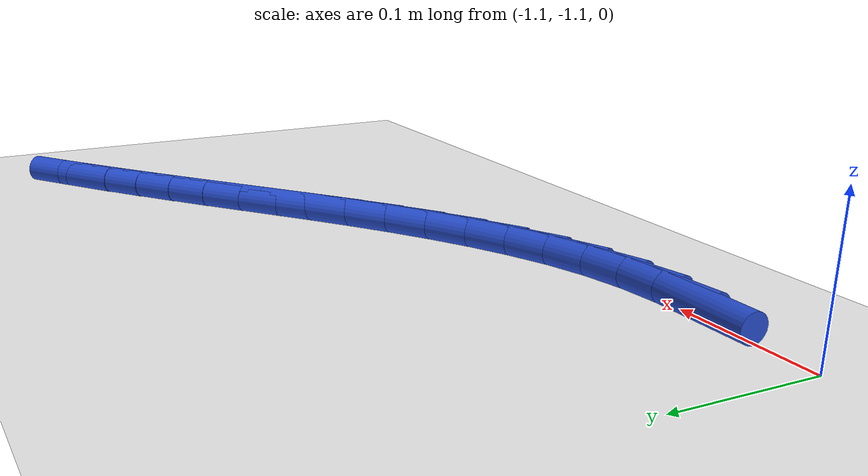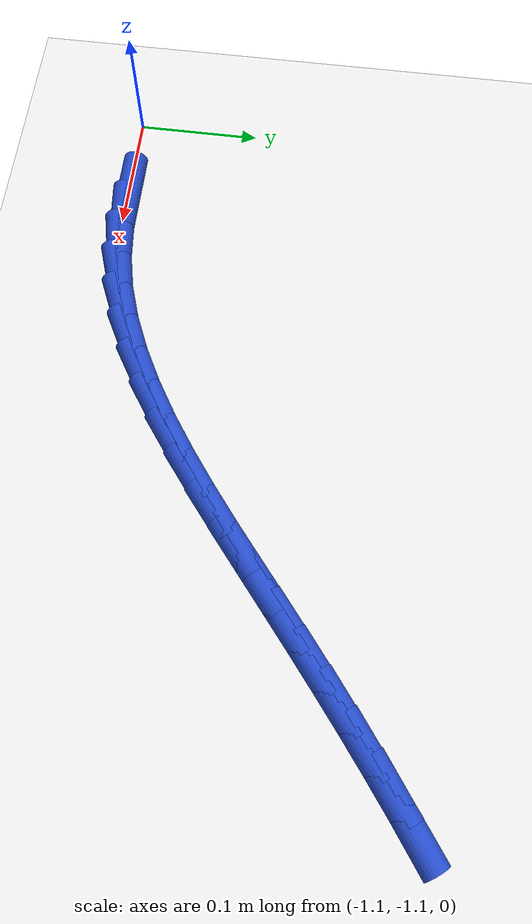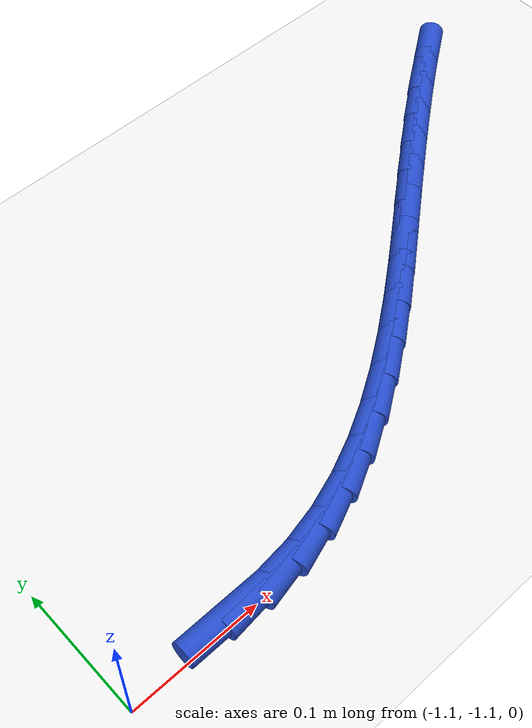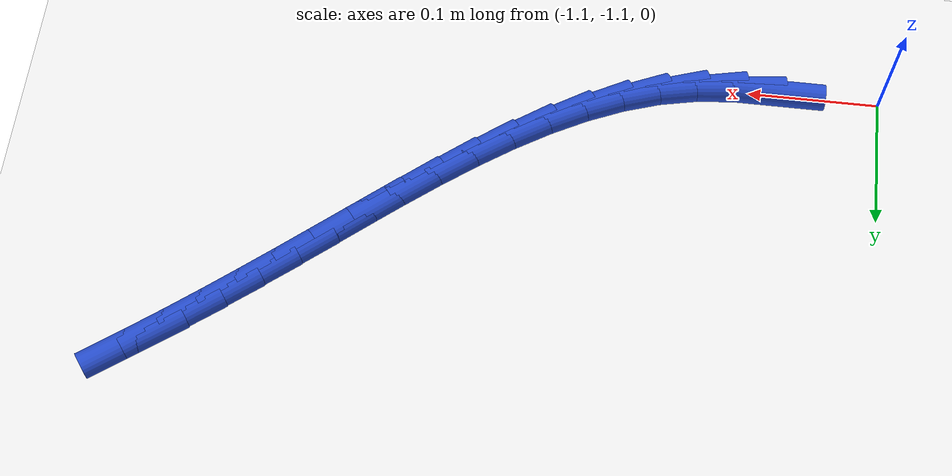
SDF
<sdf version="1.6">
 <world name="default">
  <model name="ground_plane">
   <static>1</static>
   <link name="link">
    <collision name="collision">
     <geometry><plane><normal>0 0 1</normal><size>100 100</size></plane></geometry>
     <surface><friction><ode><mu>100</mu><mu2>50</mu2></ode></friction></surface>
    </collision>
    <visual name="visual">
     <cast_shadows>0</cast_shadows>
     <geometry><plane><normal>0 0 1</normal><size>100 100</size></plane></geometry>
     <material>
      <script><uri>file://media/materials/scripts/gazebo.material</uri><name>Gazebo/WhiteGlow</name></script>
     </material>
    </visual>
   </link>
  </model>
  <model name="line">
   <link name="link_158">
    <pose>-1.0174321588178477 -1.0971775759521742 0.01 0 1.57 0.0020627287642990275</pose>
    <collision name="collision">
     <geometry><cylinder><radius>0.01</radius><length>0.08</length></cylinder></geometry>
    </collision>
    <visual name="visual">
     <material>
      <script><name>Gazebo/Blue</name><uri>file://media/materials/scripts/gazebo.material</uri></script>
     </material>
     <geometry><cylinder><radius>0.01</radius><length>0.08</length></cylinder></geometry>
    </visual>
   </link>
   <link name="link_159">
    <pose>-0.9880289044288187 -1.0971169249275616 0.01 0 1.57 0.10153496295055016</pose>
    <collision name="collision">
     <geometry><cylinder><radius>0.01</radius><length>0.08</length></cylinder></geometry>
    </collision>
    <visual name="visual">
     <material>
      <script><name>Gazebo/Blue</name><uri>file://media/materials/scripts/gazebo.material</uri></script>
     </material>
     <geometry><cylinder><radius>0.01</radius><length>0.08</length></cylinder></geometry>
    </visual>
   </link>
   <link name="link_160">
    <pose>-0.9590739671553284 -1.0941668416574213 0.01 0 1.57 0.2129770357032319</pose>
    <collision name="collision">
     <geometry><cylinder><radius>0.01</radius><length>0.08</length></cylinder></geometry>
    </collision>
    <visual name="visual">
     <material>
      <script><name>Gazebo/Blue</name><uri>file://media/materials/scripts/gazebo.material</uri></script>
     </material>
     <geometry><cylinder><radius>0.01</radius><length>0.08</length></cylinder></geometry>
    </visual>
   </link>
   <link name="link_161">
    <pose>-0.9306231073111029 -1.0880141522757327 0.01 0 1.57 0.32081518546876053</pose>
    <collision name="collision">
     <geometry><cylinder><radius>0.01</radius><length>0.08</length></cylinder></geometry>
    </collision>
    <visual name="visual">
     <material>
      <script><name>Gazebo/Blue</name><uri>file://media/materials/scripts/gazebo.material</uri></script>
     </material>
     <geometry><cylinder><radius>0.01</radius><length>0.08</length></cylinder></geometry>
    </visual>
   </link>
   <link name="link_162">
    <pose>-0.9026857439221226 -1.0787307240396176 0.01 0 1.57 0.41324708993855314</pose>
    <collision name="collision">
     <geometry><cylinder><radius>0.01</radius><length>0.08</length></cylinder></geometry>
    </collision>
    <visual name="visual">
     <material>
      <script><name>Gazebo/Blue</name><uri>file://media/materials/scripts/gazebo.material</uri></script>
     </material>
     <geometry><cylinder><radius>0.01</radius><length>0.08</length></cylinder></geometry>
    </visual>
   </link>
   <link name="link_163">
    <pose>-0.8752345827347119 -1.0666934680045144 0.01 0 1.57 0.4902285539845744</pose>
    <collision name="collision">
     <geometry><cylinder><radius>0.01</radius><length>0.08</length></cylinder></geometry>
    </collision>
    <visual name="visual">
     <material>
      <script><name>Gazebo/Blue</name><uri>file://media/materials/scripts/gazebo.material</uri></script>
     </material>
     <geometry><cylinder><radius>0.01</radius><length>0.08</length></cylinder></geometry>
    </visual>
   </link>
   <link name="link_164">
    <pose>-0.8482413230434807 -1.0522876576455837 0.01 0 1.57 0.5528070980353856</pose>
    <collision name="collision">
     <geometry><cylinder><radius>0.01</radius><length>0.08</length></cylinder></geometry>
    </collision>
    <visual name="visual">
     <material>
      <script><name>Gazebo/Blue</name><uri>file://media/materials/scripts/gazebo.material</uri></script>
     </material>
     <geometry><cylinder><radius>0.01</radius><length>0.08</length></cylinder></geometry>
    </visual>
   </link>
   <link name="link_165">
    <pose>-0.8216776641430401 -1.035898566437986 0.01 0 1.57 0.602299723878682</pose>
    <collision name="collision">
     <geometry><cylinder><radius>0.01</radius><length>0.08</length></cylinder></geometry>
    </collision>
    <visual name="visual">
     <material>
      <script><name>Gazebo/Blue</name><uri>file://media/materials/scripts/gazebo.material</uri></script>
     </material>
     <geometry><cylinder><radius>0.01</radius><length>0.08</length></cylinder></geometry>
    </visual>
   </link>
   <link name="link_166">
    <pose>-0.7955153053279993 -1.0179114678568817 0.01 0 1.57 0.6399631835792751</pose>
    <collision name="collision">
     <geometry><cylinder><radius>0.01</radius><length>0.08</length></cylinder></geometry>
    </collision>
    <visual name="visual">
     <material>
      <script><name>Gazebo/Blue</name><uri>file://media/materials/scripts/gazebo.material</uri></script>
     </material>
     <geometry><cylinder><radius>0.01</radius><length>0.08</length></cylinder></geometry>
    </visual>
   </link>
   <link name="link_167">
    <pose>-0.7697259458929682 -0.9987116353774305 0.01 0 1.57 0.6668205998551096</pose>
    <collision name="collision">
     <geometry><cylinder><radius>0.01</radius><length>0.08</length></cylinder></geometry>
    </collision>
    <visual name="visual">
     <material>
      <script><name>Gazebo/Blue</name><uri>file://media/materials/scripts/gazebo.material</uri></script>
     </material>
     <geometry><cylinder><radius>0.01</radius><length>0.08</length></cylinder></geometry>
    </visual>
   </link>
   <link name="link_168">
    <pose>-0.7442812851325573 -0.9786843424747936 0.01 0 1.57 0.6835801244305105</pose>
    <collision name="collision">
     <geometry><cylinder><radius>0.01</radius><length>0.08</length></cylinder></geometry>
    </collision>
    <visual name="visual">
     <material>
      <script><name>Gazebo/Blue</name><uri>file://media/materials/scripts/gazebo.material</uri></script>
     </material>
     <geometry><cylinder><radius>0.01</radius><length>0.08</length></cylinder></geometry>
    </visual>
   </link>
   <link name="link_169">
    <pose>-0.7191530223413762 -0.9582148626241307 0.01 0 1.57 0.690596147719811</pose>
    <collision name="collision">
     <geometry><cylinder><radius>0.01</radius><length>0.08</length></cylinder></geometry>
    </collision>
    <visual name="visual">
     <material>
      <script><name>Gazebo/Blue</name><uri>file://media/materials/scripts/gazebo.material</uri></script>
     </material>
     <geometry><cylinder><radius>0.01</radius><length>0.08</length></cylinder></geometry>
    </visual>
   </link>
   <link name="link_170">
    <pose>-0.6943128568140345 -0.9376884693006017 0.01 0 1.57 0.6883239474072685</pose>
    <collision name="collision">
     <geometry><cylinder><radius>0.01</radius><length>0.08</length></cylinder></geometry>
    </collision>
    <visual name="visual">
     <material>
      <script><name>Gazebo/Blue</name><uri>file://media/materials/scripts/gazebo.material</uri></script>
     </material>
     <geometry><cylinder><radius>0.01</radius><length>0.08</length></cylinder></geometry>
    </visual>
   </link>
   <link name="link_171">
    <pose>-0.6697274629755275 -0.9174664358560264 0.01 0 1.57 0.6810758013872705</pose>
    <collision name="collision">
     <geometry><cylinder><radius>0.01</radius><length>0.08</length></cylinder></geometry>
    </collision>
    <visual name="visual">
     <material>
      <script><name>Gazebo/Blue</name><uri>file://media/materials/scripts/gazebo.material</uri></script>
     </material>
     <geometry><cylinder><radius>0.01</radius><length>0.08</length></cylinder></geometry>
    </visual>
   </link>
   <link name="link_172">
    <pose>-0.645315814747079 -0.897682205258267 0.01 0 1.57 0.6712904714298631</pose>
    <collision name="collision">
     <geometry><cylinder><radius>0.01</radius><length>0.08</length></cylinder></geometry>
    </collision>
    <visual name="visual">
     <material>
      <script><name>Gazebo/Blue</name><uri>file://media/materials/scripts/gazebo.material</uri></script>
     </material>
     <geometry><cylinder><radius>0.01</radius><length>0.08</length></cylinder></geometry>
    </visual>
   </link>
   <link name="link_173">
    <pose>-0.6209705365965911 -0.8783433684276605 0.01 0 1.57 0.6589920998438038</pose>
    <collision name="collision">
     <geometry><cylinder><radius>0.01</radius><length>0.08</length></cylinder></geometry>
    </collision>
    <visual name="visual">
     <material>
      <script><name>Gazebo/Blue</name><uri>file://media/materials/scripts/gazebo.material</uri></script>
     </material>
     <geometry><cylinder><radius>0.01</radius><length>0.08</length></cylinder></geometry>
    </visual>
   </link>
   <link name="link_174">
    <pose>-0.5965839757776291 -0.8594561922346093 0.01 0 1.57 0.6442213474258893</pose>
    <collision name="collision">
     <geometry><cylinder><radius>0.01</radius><length>0.08</length></cylinder></geometry>
    </collision>
    <visual name="visual">
     <material>
      <script><name>Gazebo/Blue</name><uri>file://media/materials/scripts/gazebo.material</uri></script>
     </material>
     <geometry><cylinder><radius>0.01</radius><length>0.08</length></cylinder></geometry>
    </visual>
   </link>
   <link name="link_175">
    <pose>-0.572048479543758 -0.8410269435495166 0.01 0 1.57 0.6270647319065711</pose>
    <collision name="collision">
     <geometry><cylinder><radius>0.01</radius><length>0.08</length></cylinder></geometry>
    </collision>
    <visual name="visual">
     <material>
      <script><name>Gazebo/Blue</name><uri>file://media/materials/scripts/gazebo.material</uri></script>
     </material>
     <geometry><cylinder><radius>0.01</radius><length>0.08</length></cylinder></geometry>
    </visual>
   </link>
  </model>
 </world>
</sdf>
